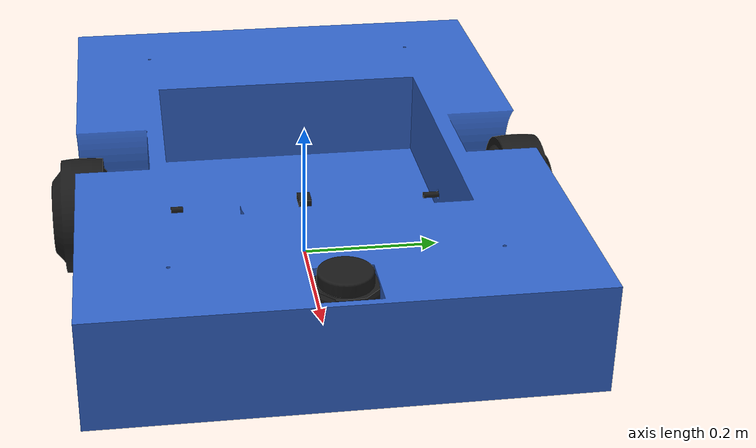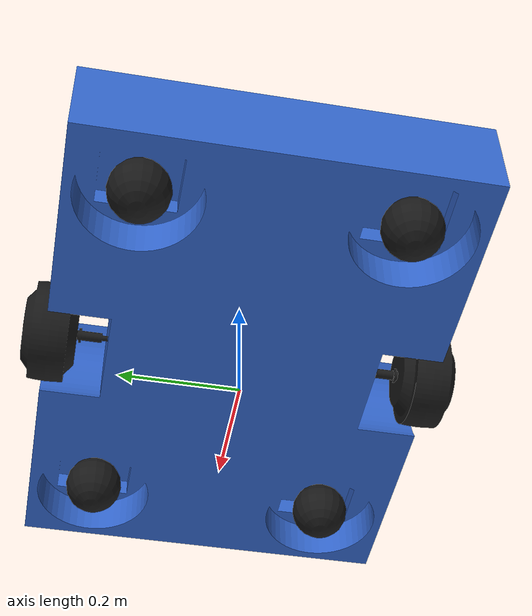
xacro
<?xml version="1.0"?>
<robot name="my_amr" xmlns:xacro="http://www.ros.org/wiki/xacro">

  <!-- Mesh scale: adjust if your STLs were exported in mm instead of meters -->
  <xacro:property name="mesh_scale" value="0.001 0.001 0.001"/>

  <!-- ======================== Base ======================== -->

  <link name="base_footprint"/>

  <joint name="base_footprint_joint" type="fixed">
    <parent link="base_footprint"/>
    <child link="base_link"/>
    <origin xyz="0 0 0.0826"/>
  </joint>

  <link name="base_link">
    <visual>
      <origin rpy="0 0 0.0"/>
      <geometry>
        <mesh filename="package://robot_description/meshes/body_ccw_90.stl" scale="${mesh_scale}"/>
      </geometry>
      <material name="blue"><color rgba="0.2 0.4 0.8 1"/></material>
    </visual>
    <collision>
      <origin rpy="0 0 0.0"/>
      <geometry>
        <mesh filename="package://robot_description/meshes/body_ccw_90.stl" scale="${mesh_scale}"/>
      </geometry>
    </collision>
    <inertial>
      <mass value="15.0"/>
      <inertia ixx="0.095" ixy="0" ixz="0" iyy="0.157" iyz="0" izz="0.229"/>
    </inertial>
  </link>

  <!-- ======================== Drive wheels ======================== -->

  <joint name="left_wheel_joint" type="continuous">
    <parent link="base_link"/>
    <child link="left_wheel"/>
    <origin xyz="0.0 0.274 0.0" rpy="1.5708 0 0"/>
    <!-- Match the right wheel's rotation direction in the base frame. -->
    <axis xyz="0 0 -1"/>
  </joint>

  <link name="left_wheel">
    <visual>
      <origin rpy="0 0 0"/>
      <geometry>
        <mesh filename="package://robot_description/meshes/wheel_y_ccw_90.stl" scale="${mesh_scale}"/>
      </geometry>
      <material name="dark"><color rgba="0.1 0.1 0.1 1"/></material>
    </visual>
    <collision>
      <origin rpy="0 0 0"/>
      <geometry>
          <mesh filename="package://robot_description/meshes/wheel_y_ccw_90.stl" scale="${mesh_scale}"/>
        </geometry>
    </collision>
    <inertial>
      <mass value="0.5"/>
      <inertia ixx="0.000323" ixy="0" ixz="0" iyy="0.000323" iyz="0" izz="0.000625"/>
    </inertial>
  </link>

  <joint name="right_wheel_joint" type="continuous">
    <parent link="base_link"/>
    <child link="right_wheel"/>
    <origin xyz="0.0 -0.274 0.0" rpy="-1.5708 0 0"/>
    <axis xyz="0 0 1"/>
  </joint>

  <link name="right_wheel">
    <visual>
      <!-- rpy="0 3.14159 0" flips the mesh if the right side appears mirrored -->
      <origin rpy="0 0 0"/>
      <geometry>
        <mesh filename="package://robot_description/meshes/wheel_y_ccw_90.stl" scale="${mesh_scale}"/>
      </geometry>
      <material name="dark"><color rgba="0.1 0.1 0.1 1"/></material>
    </visual>
    <collision>
      <geometry>
          <mesh filename="package://robot_description/meshes/wheel_y_ccw_90.stl" scale="${mesh_scale}"/>
        </geometry>
    </collision>
    <inertial>
      <mass value="0.5"/>
      <inertia ixx="0.000323" ixy="0" ixz="0" iyy="0.000323" iyz="0" izz="0.000625"/>
    </inertial>
  </link>

  <!-- ======================== Caster wheels ======================== -->

  <joint name="front_left_caster_joint" type="fixed">
    <parent link="base_link"/>
    <child link="front_left_caster"/>
    <origin xyz=" 0.335 0.210 -0.031"/>
  </joint>

  <link name="front_left_caster">
    <visual>
      <geometry><sphere radius="0.05"/></geometry>
      <material name="dark"><color rgba="0.1 0.1 0.1 1"/></material>
    </visual>
    <collision>
      <geometry><sphere radius="0.05"/></geometry>
    </collision>
    <inertial>
      <mass value="0.1"/>
      <inertia ixx="0.000025" ixy="0" ixz="0" iyy="0.000025" iyz="0" izz="0.000025"/>
    </inertial>
  </link>

  <joint name="rear_left_caster_joint" type="fixed">
    <parent link="base_link"/>
    <child link="rear_left_caster"/>
    <origin xyz="0.335 -0.210 -0.031"/>
  </joint>

  <link name="rear_left_caster">
    <visual>
      <geometry><sphere radius="0.05"/></geometry>
      <material name="dark"><color rgba="0.1 0.1 0.1 1"/></material>
    </visual>
    <collision>
      <geometry><sphere radius="0.05"/></geometry>
    </collision>
    <inertial>
      <mass value="0.1"/>
      <inertia ixx="0.000025" ixy="0" ixz="0" iyy="0.000025" iyz="0" izz="0.000025"/>
    </inertial>
  </link>

  <joint name="front_right_caster_joint" type="fixed">
    <parent link="base_link"/>
    <child link="front_right_caster"/>
    <origin xyz="-0.335 0.210 -0.031"/>
  </joint>

  <link name="front_right_caster">
    <visual>
      <geometry><sphere radius="0.05"/></geometry>
      <material name="dark"><color rgba="0.1 0.1 0.1 1"/></material>
    </visual>
    <collision>
      <geometry><sphere radius="0.05"/></geometry>
    </collision>
    <inertial>
      <mass value="0.1"/>
      <inertia ixx="0.000025" ixy="0" ixz="0" iyy="0.000025" iyz="0" izz="0.000025"/>
    </inertial>
  </link>

  <joint name="rear_right_caster_joint" type="fixed">
    <parent link="base_link"/>
    <child link="rear_right_caster"/>
    <origin xyz="-0.335 -0.210 -0.031"/>
  </joint>

  <link name="rear_right_caster">
    <visual>
      <geometry><sphere radius="0.05"/></geometry>
      <material name="dark"><color rgba="0.1 0.1 0.1 1"/></material>
    </visual>
    <collision>
      <geometry><sphere radius="0.05"/></geometry>
    </collision>
    <inertial>
      <mass value="0.1"/>
      <inertia ixx="0.000025" ixy="0" ixz="0" iyy="0.000025" iyz="0" izz="0.000025"/>
    </inertial>
  </link>

  <!-- ======================== RPLidar S2 ======================== -->

  <joint name="lidar_joint" type="fixed">
    <parent link="base_link"/>
    <child link="lidar_link"/>
    <!-- lidar body mount: mount height (0.08) + sensor height (0.039) -->
    <origin xyz="0.400 0 0.110"/>
  </joint>

  <link name="lidar_link">
    <visual>
      <!-- mesh Z starts at 0 (sensor base); shift down so it renders below the scan frame -->
      <origin xyz="0 0 -0.030"/>
      <geometry>
        <mesh filename="package://robot_description/meshes/rplidar_s2_frame_aligned.stl" scale="${mesh_scale}"/>
      </geometry>
      <material name="dark"><color rgba="0.1 0.1 0.1 1"/></material>
    </visual>
    <inertial>
      <mass value="0.185"/>
      <inertia ixx="0.0001" ixy="0" ixz="0" iyy="0.0001" iyz="0" izz="0.0001"/>
    </inertial>
  </link>

  <!-- ======================== Ellipse Micro AHRS (IMU) ======================== -->

  <joint name="imu_joint" type="fixed">
    <parent link="base_link"/>
    <child link="imu_link"/>
    <origin xyz="0 0 0.0"/>
  </joint>

  <link name="imu_link">
    <visual>
      <geometry>
        <mesh filename="package://robot_description/meshes/ellipse_micro_ahrs_ccw_90.stl" scale="${mesh_scale}"/>
      </geometry>
      <material name="dark"><color rgba="0.1 0.1 0.1 1"/></material>
    </visual>
    <inertial>
      <mass value="0.017"/>
      <inertia ixx="0.000001" ixy="0" ixz="0" iyy="0.000001" iyz="0" izz="0.000001"/>
    </inertial>
  </link>

</robot>
